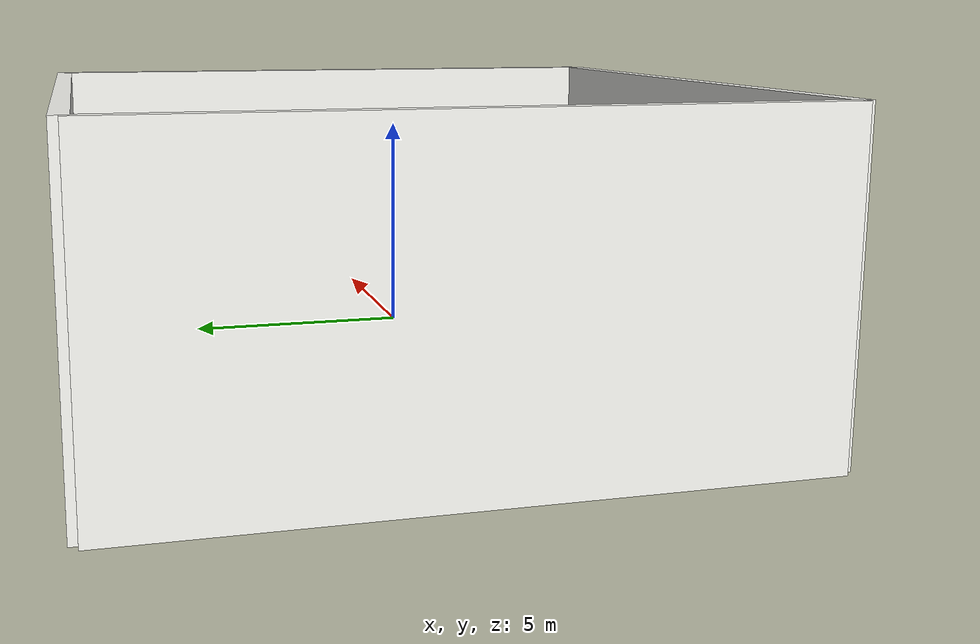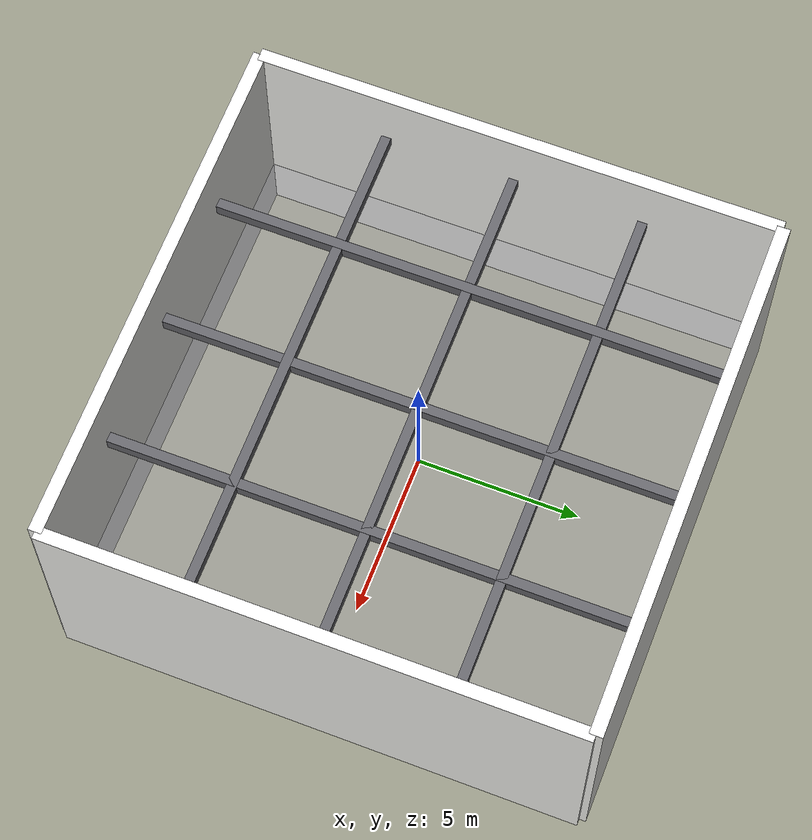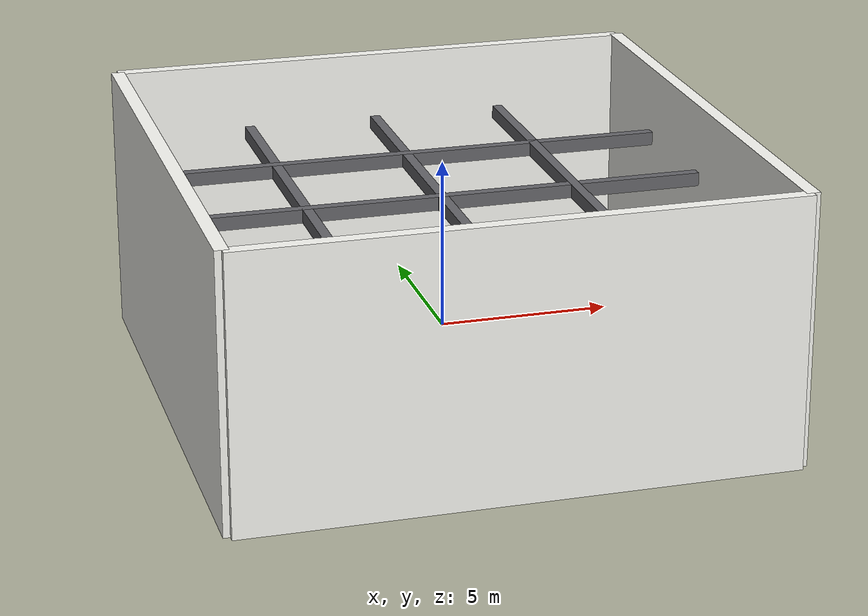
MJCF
o<mujoco model="room">
<!-- Room assets and geometry -->
  <asset>
    <!-- Polished concrete studio floor -->
    <texture name="polished_concrete" type="2d" builtin="gradient"
             rgb1="0.65 0.65 0.68" rgb2="0.58 0.58 0.62"
             width="256" height="256"/>

    <!-- White painted studio walls -->
    <texture name="white_studio" type="2d" builtin="flat"
             rgb1="0.98 0.98 0.96" rgb2="0.96 0.96 0.94"
             width="1024" height="1024"/>

    <!-- Exposed ceiling structure -->
    <texture name="exposed_structure" type="2d" builtin="flat"
             rgb1="0.4 0.4 0.42" rgb2="0.38 0.38 0.4"
             width="512" height="512"/>

    <!-- Materials -->
    <material name="studio_floor" texture="polished_concrete"
              texrepeat="15 15"
              specular="0.7"
              shininess="0.6"
              reflectance="0.3"/>

    <material name="studio_walls" texture="white_studio"
              texrepeat="1 1"
              specular="0.05"
              shininess="0.02"
              reflectance="0.02"/>

    <material name="structure" texture="exposed_structure"
              texrepeat="3 3"
              specular="0.4"
              shininess="0.3"
              reflectance="0.1"/>
  </asset>

  <worldbody>
    <!-- Large polished concrete floor -->
    <geom name="floor" type="plane"
          size="8 8 0.1"
          material="studio_floor"
          friction="1.0 0.03 0.01"/>

    <!-- Minimal white walls - open studio feel -->
    <geom name="wall_north" type="box"
          size="8 0.2 4"
          pos="0 8 2"
          material="studio_walls"/>
    <geom name="wall_south" type="box"
          size="8 0.2 4"
          pos="0 -8 2"
          material="studio_walls"/>
    <geom name="wall_east" type="box"
          size="0.2 8 4"
          pos="8 0 2"
          material="studio_walls"/>
    <geom name="wall_west" type="box"
          size="0.2 8 4"
          pos="-8 0 2"
          material="studio_walls"/>

    <!-- Exposed ceiling structure/beams -->
    <geom name="ceiling_beam1" type="box"
          size="8 0.15 0.2"
          pos="0 -4 3.8"
          material="structure"/>
    <geom name="ceiling_beam2" type="box"
          size="8 0.15 0.2"
          pos="0 0 3.8"
          material="structure"/>
    <geom name="ceiling_beam3" type="box"
          size="8 0.15 0.2"
          pos="0 4 3.8"
          material="structure"/>

    <!-- Cross beams -->
    <geom name="cross_beam1" type="box"
          size="0.15 8 0.2"
          pos="-4 0 3.8"
          material="structure"/>
    <geom name="cross_beam2" type="box"
          size="0.15 8 0.2"
          pos="0 0 3.8"
          material="structure"/>
    <geom name="cross_beam3" type="box"
          size="0.15 8 0.2"
          pos="4 0 3.8"
          material="structure"/>

    <!-- Large studio windows (floor to ceiling) -->
    <geom name="window_north" type="box"
          size="6 0.05 3"
          pos="0 7.95 2"
          rgba="0.85 0.9 1.0 0.4"/>

    <!-- Track lighting on ceiling -->
    <geom name="track_light1" type="box"
          size="0.8 0.05 0.03"
          pos="-3 0 3.7"
          rgba="1 1 0.98 0.8"/>
    <geom name="track_light2" type="box"
          size="0.8 0.05 0.03"
          pos="-1 0 3.7"
          rgba="1 1 0.98 0.8"/>
    <geom name="track_light3" type="box"
          size="0.8 0.05 0.03"
          pos="1 0 3.7"
          rgba="1 1 0.98 0.8"/>
    <geom name="track_light4" type="box"
          size="0.8 0.05 0.03"
          pos="3 0 3.7"
          rgba="1 1 0.98 0.8"/>
  </worldbody>
</mujoco>
